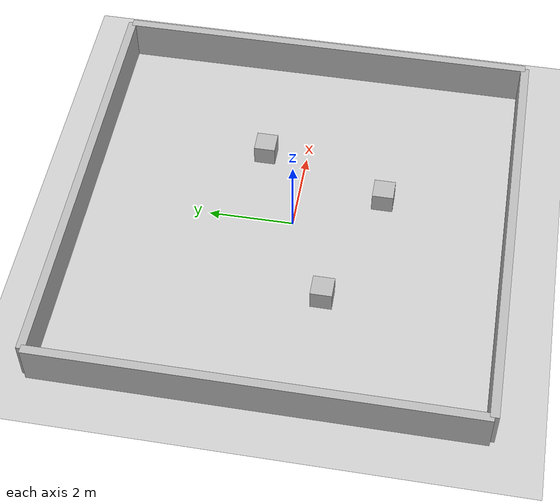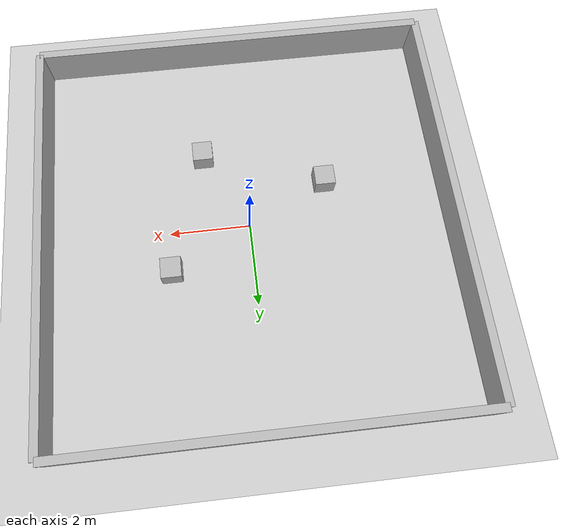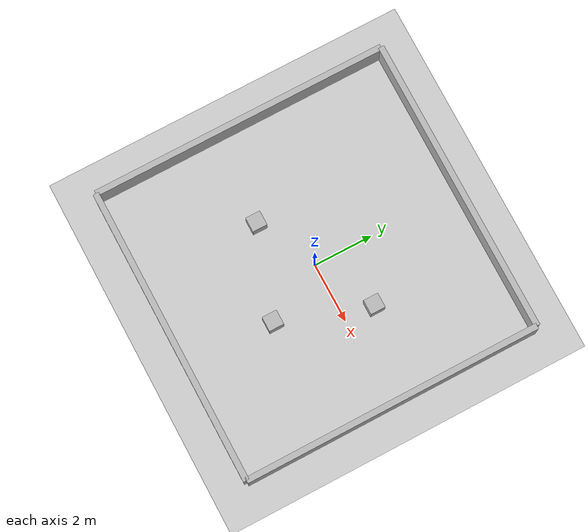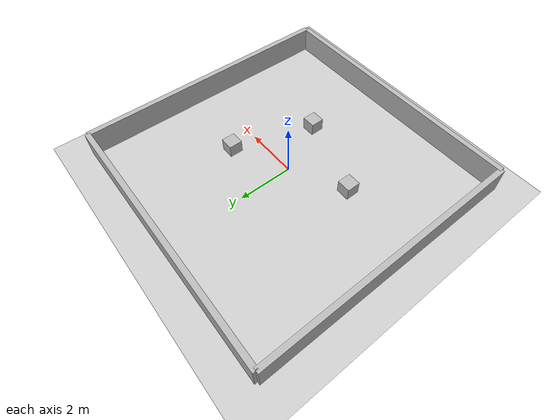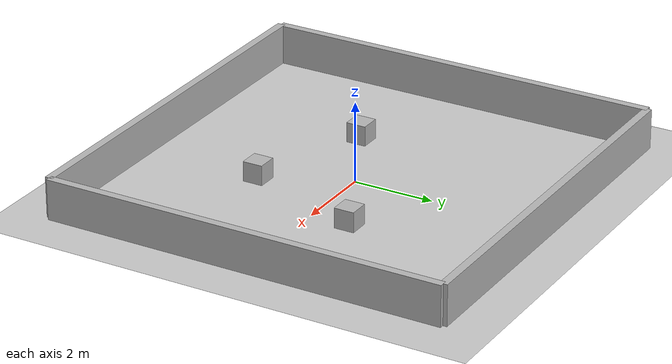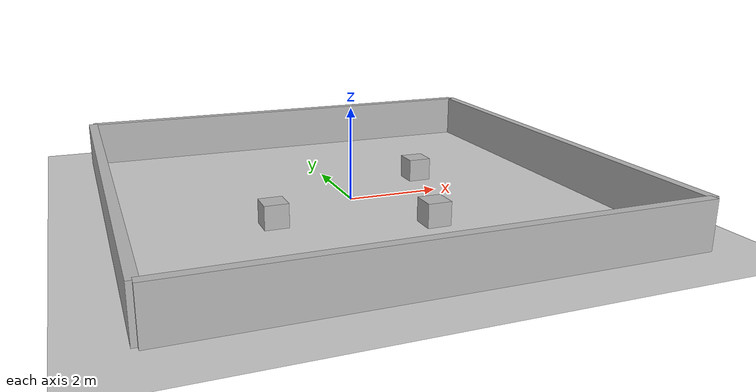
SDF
<?xml version="1.0"?>
<sdf version="1.6">
  <world name="obstacle_world">

    <!-- Lighting -->
    <include>
      <uri>model://sun</uri>
    </include>

    <!-- Ground -->
    <include>
      <uri>model://ground_plane</uri>
    </include>

    <!-- Surrounding Walls -->
    <!-- Wall Top -->
    <model name="wall_top">
      <static>true</static>
      <link name="link">
        <collision name="collision">
          <geometry>
            <box><size>10 0.2 1</size></box>
          </geometry>
        </collision>
        <visual name="visual">
          <geometry>
            <box><size>10 0.2 1</size></box>
          </geometry>
        </visual>
        <pose>0 5 0.5 0 0 0</pose>
      </link>
    </model>

    <!-- Wall Bottom -->
    <model name="wall_bottom">
      <static>true</static>
      <link name="link">
        <collision name="collision">
          <geometry>
            <box><size>10 0.2 1</size></box>
          </geometry>
        </collision>
        <visual name="visual">
          <geometry>
            <box><size>10 0.2 1</size></box>
          </geometry>
        </visual>
        <pose>0 -5 0.5 0 0 0</pose>
      </link>
    </model>

    <!-- Wall Left -->
    <model name="wall_left">
      <static>true</static>
      <link name="link">
        <collision name="collision">
          <geometry>
            <box><size>0.2 10 1</size></box>
          </geometry>
        </collision>
        <visual name="visual">
          <geometry>
            <box><size>0.2 10 1</size></box>
          </geometry>
        </visual>
        <pose>-5 0 0.5 0 0 0</pose>
      </link>
    </model>

    <!-- Wall Right -->
    <model name="wall_right">
      <static>true</static>
      <link name="link">
        <collision name="collision">
          <geometry>
            <box><size>0.2 10 1</size></box>
          </geometry>
        </collision>
        <visual name="visual">
          <geometry>
            <box><size>0.2 10 1</size></box>
          </geometry>
        </visual>
        <pose>5 0 0.5 0 0 0</pose>
      </link>
    </model>

    <!-- Obstacle 1 -->
    <model name="obstacle_1">
      <static>true</static>
      <link name="link">
        <collision name="collision">
          <geometry>
            <box><size>0.5 0.5 0.5</size></box>
          </geometry>
        </collision>
        <visual name="visual">
          <geometry>
            <box><size>0.5 0.5 0.5</size></box>
          </geometry>
        </visual>
        <pose>2 1 0.25 0 0 0</pose>
      </link>
    </model>

    <!-- Obstacle 2 -->
    <model name="obstacle_2">
      <static>true</static>
      <link name="link">
        <collision name="collision">
          <geometry>
            <box><size>0.5 0.5 0.5</size></box>
          </geometry>
        </collision>
        <visual name="visual">
          <geometry>
            <box><size>0.5 0.5 0.5</size></box>
          </geometry>
        </visual>
        <pose>-2 -1 0.25 0 0 0</pose>
      </link>
    </model>

    <!-- Obstacle 3 -->
    <model name="obstacle_3">
      <static>true</static>
      <link name="link">
        <collision name="collision">
          <geometry>
            <box><size>0.5 0.5 0.5</size></box>
          </geometry>
        </collision>
        <visual name="visual">
          <geometry>
            <box><size>0.5 0.5 0.5</size></box>
          </geometry>
        </visual>
        <pose>1 -2 0.25 0 0 0</pose>
      </link>
    </model>

  </world>
</sdf>
